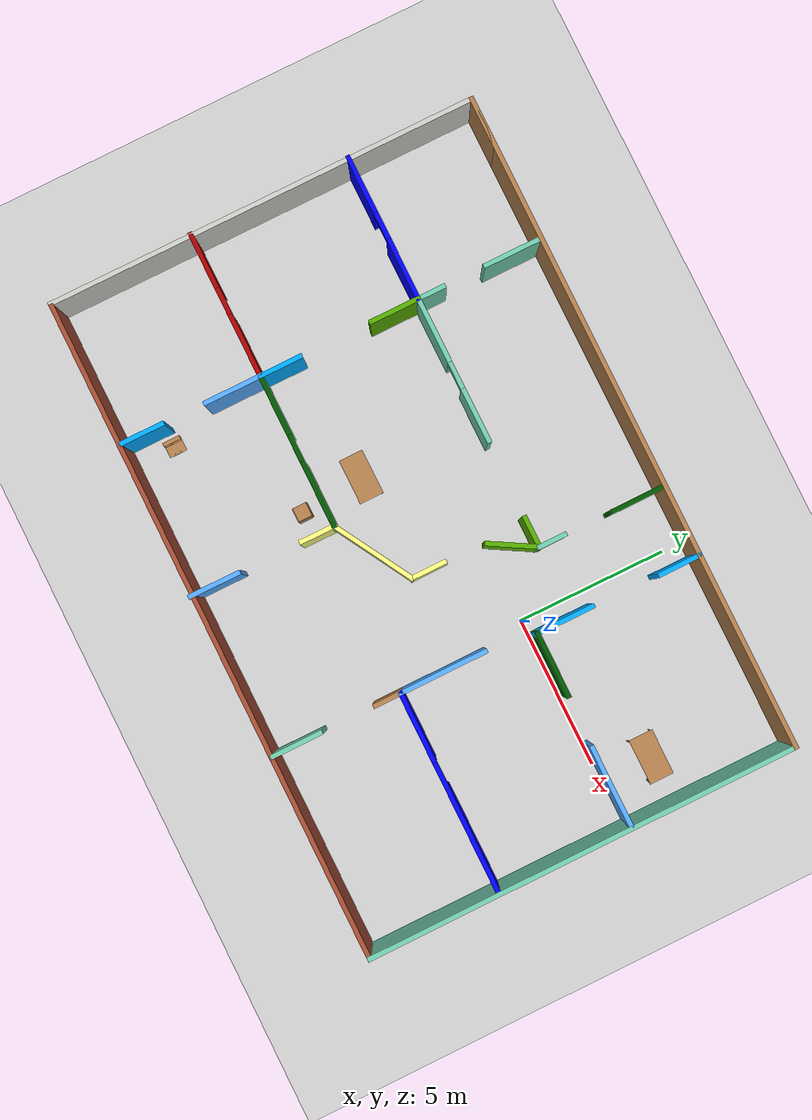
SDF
<sdf version="1.6">
 <world name="default">
  <model name="ground_plane">
   <static>1</static>
   <link name="link">
    <collision name="collision">
     <geometry><plane><normal>0 0 1</normal><size>100 100</size></plane></geometry>
     <surface>
      <contact><collide_bitmask>65535</collide_bitmask></contact>
      <friction><ode><mu>100</mu><mu2>50</mu2></ode></friction>
     </surface>
    </collision>
    <visual name="visual">
     <cast_shadows>0</cast_shadows>
     <geometry><plane><normal>0 0 1</normal><size>100 100</size></plane></geometry>
     <material>
      <script><uri>file://media/materials/scripts/gazebo.material</uri><name>Gazebo/Grey</name></script>
     </material>
    </visual>
   </link>
  </model>
  <model name="BuildingThree">
   <pose>-4.03643 -1.5479 0 0 -0 0</pose>
   <link name="Wall_0">
    <collision name="Wall_0_Collision">
     <geometry><box><size>21.75 0.15 2.5</size></box></geometry>
     <pose>0 0 1.25 0 -0 0</pose>
    </collision>
    <visual name="Wall_0_Visual">
     <pose>0 0 1.25 0 -0 0</pose>
     <geometry><box><size>21.75 0.15 2.5</size></box></geometry>
     <material>
      <script><uri>file://media/materials/scripts/gazebo.material</uri><name>Gazebo/Wood</name></script>
      <ambient>1 1 1 1</ambient>
     </material>
     <meta><layer>0</layer></meta>
    </visual>
    <pose>0.266002 7.20676 0 0 -0 0</pose>
   </link>
   <link name="Wall_1">
    <collision name="Wall_1_Collision">
     <geometry><box><size>14.5 0.15 2.5</size></box></geometry>
     <pose>0 0 1.25 0 -0 0</pose>
    </collision>
    <visual name="Wall_1_Visual">
     <pose>0 0 1.25 0 -0 0</pose>
     <geometry><box><size>14.5 0.15 2.5</size></box></geometry>
     <material>
      <script><uri>file://media/materials/scripts/gazebo.material</uri><name>Gazebo/Grey</name></script>
      <ambient>0.435294 0.796078 0.67451 1</ambient>
     </material>
     <meta><layer>0</layer></meta>
    </visual>
    <pose>11.066 0.031757 0 0 0 -1.5708</pose>
   </link>
   <link name="Wall_10">
    <pose>-8.641 -2.36931 0 0 -0 0</pose>
    <visual name="Wall_10_Visual_0">
     <pose>-1.54369 0 1.25 0 -0 0</pose>
     <geometry><box><size>1.91262 0.15 2.5</size></box></geometry>
     <material>
      <script><uri>file://media/materials/scripts/gazebo.material</uri><name>Gazebo/Grey</name></script>
      <ambient>0.666667 0 0 1</ambient>
     </material>
     <meta><layer>0</layer></meta>
    </visual>
    <collision name="Wall_10_Collision_0">
     <geometry><box><size>1.91262 0.15 2.5</size></box></geometry>
     <pose>-1.54369 0 1.25 0 -0 0</pose>
    </collision>
    <visual name="Wall_10_Visual_1">
     <pose>1.40631 0 1.25 0 -0 0</pose>
     <geometry><box><size>2.18738 0.15 2.5</size></box></geometry>
     <material>
      <script><uri>file://media/materials/scripts/gazebo.material</uri><name>Gazebo/Grey</name></script>
      <ambient>0.666667 0 0 1</ambient>
     </material>
     <meta><layer>0</layer></meta>
    </visual>
    <collision name="Wall_10_Collision_1">
     <geometry><box><size>2.18738 0.15 2.5</size></box></geometry>
     <pose>1.40631 0 1.25 0 -0 0</pose>
    </collision>
    <visual name="Wall_10_Visual_2">
     <pose>-0.137383 0 2.25 0 -0 0</pose>
     <geometry><box><size>0.9 0.15 0.5</size></box></geometry>
     <material>
      <script><uri>file://media/materials/scripts/gazebo.material</uri><name>Gazebo/Grey</name></script>
      <ambient>0.666667 0 0 1</ambient>
     </material>
     <meta><layer>0</layer></meta>
    </visual>
    <collision name="Wall_10_Collision_2">
     <geometry><box><size>0.9 0.15 0.5</size></box></geometry>
     <pose>-0.137383 0 2.25 0 -0 0</pose>
    </collision>
   </link>
   <link name="Wall_11">
    <collision name="Wall_11_Collision">
     <geometry><box><size>2 0.15 2.5</size></box></geometry>
     <pose>0 0 1.25 0 -0 0</pose>
    </collision>
    <visual name="Wall_11_Visual">
     <pose>0 0 1.25 0 -0 0</pose>
     <geometry><box><size>2 0.15 2.5</size></box></geometry>
     <material>
      <script><uri>file://media/materials/scripts/gazebo.material</uri><name>Gazebo/Grey</name></script>
      <ambient>0.333333 0.666667 1 1</ambient>
     </material>
     <meta><layer>0</layer></meta>
    </visual>
    <pose>-6.216 -3.29431 0 0 0 -1.5708</pose>
   </link>
   <link name="Wall_13">
    <collision name="Wall_13_Collision">
     <geometry><box><size>1.5 0.15 2.5</size></box></geometry>
     <pose>0 0 1.25 0 -0 0</pose>
    </collision>
    <visual name="Wall_13_Visual">
     <pose>0 0 1.25 0 -0 0</pose>
     <geometry><box><size>1.5 0.15 2.5</size></box></geometry>
     <material>
      <script><uri>file://media/materials/scripts/gazebo.material</uri><name>Gazebo/Grey</name></script>
      <ambient>0 0.666667 1 1</ambient>
     </material>
     <meta><layer>0</layer></meta>
    </visual>
    <pose>-6.22477 -6.37595 0 0 -0 1.5708</pose>
   </link>
   <link name="Wall_15">
    <collision name="Wall_15_Collision">
     <geometry><box><size>2 0.15 2.5</size></box></geometry>
     <pose>0 0 1.25 0 -0 0</pose>
    </collision>
    <visual name="Wall_15_Visual">
     <pose>0 0 1.25 0 -0 0</pose>
     <geometry><box><size>2 0.15 2.5</size></box></geometry>
     <material>
      <script><uri>file://media/materials/scripts/gazebo.material</uri><name>Gazebo/Grey</name></script>
      <ambient>0.435294 0.796078 0.67451 1</ambient>
     </material>
     <meta><layer>0</layer></meta>
    </visual>
    <pose>-6.22477 6.22856 0 0 0 -1.5708</pose>
   </link>
   <link name="Wall_17">
    <pose>-8.641 3.00393 0 0 -0 0</pose>
    <visual name="Wall_17_Visual_0">
     <pose>-1.51709 0 1.25 0 -0 0</pose>
     <geometry><box><size>1.96582 0.15 2.5</size></box></geometry>
     <material>
      <script><uri>file://media/materials/scripts/gazebo.material</uri><name>Gazebo/Grey</name></script>
      <ambient>0 0 1 1</ambient>
     </material>
     <meta><layer>0</layer></meta>
    </visual>
    <collision name="Wall_17_Collision_0">
     <geometry><box><size>1.96582 0.15 2.5</size></box></geometry>
     <pose>-1.51709 0 1.25 0 -0 0</pose>
    </collision>
    <visual name="Wall_17_Visual_1">
     <pose>1.43291 0 1.25 0 -0 0</pose>
     <geometry><box><size>2.13418 0.15 2.5</size></box></geometry>
     <material>
      <script><uri>file://media/materials/scripts/gazebo.material</uri><name>Gazebo/Grey</name></script>
      <ambient>0 0 1 1</ambient>
     </material>
     <meta><layer>0</layer></meta>
    </visual>
    <collision name="Wall_17_Collision_1">
     <geometry><box><size>2.13418 0.15 2.5</size></box></geometry>
     <pose>1.43291 0 1.25 0 -0 0</pose>
    </collision>
    <visual name="Wall_17_Visual_2">
     <pose>-0.084182 0 2.25 0 -0 0</pose>
     <geometry><box><size>0.9 0.15 0.5</size></box></geometry>
     <material>
      <script><uri>file://media/materials/scripts/gazebo.material</uri><name>Gazebo/Grey</name></script>
      <ambient>0 0 1 1</ambient>
     </material>
     <meta><layer>0</layer></meta>
    </visual>
    <collision name="Wall_17_Collision_2">
     <geometry><box><size>0.9 0.15 0.5</size></box></geometry>
     <pose>-0.084182 0 2.25 0 -0 0</pose>
    </collision>
   </link>
   <link name="Wall_18">
    <collision name="Wall_18_Collision">
     <geometry><box><size>1 0.15 2.5</size></box></geometry>
     <pose>0 0 1.25 0 -0 0</pose>
    </collision>
    <visual name="Wall_18_Visual">
     <pose>0 0 1.25 0 -0 0</pose>
     <geometry><box><size>1 0.15 2.5</size></box></geometry>
     <material>
      <script><uri>file://media/materials/scripts/gazebo.material</uri><name>Gazebo/Grey</name></script>
      <ambient>0.435294 0.796078 0.67451 1</ambient>
     </material>
     <meta><layer>0</layer></meta>
    </visual>
    <pose>-6.216 3.42893 0 0 -0 1.5708</pose>
   </link>
   <link name="Wall_2">
    <collision name="Wall_2_Collision">
     <geometry><box><size>22.25 0.15 2.5</size></box></geometry>
     <pose>0 0 1.25 0 -0 0</pose>
    </collision>
    <visual name="Wall_2_Visual">
     <pose>0 0 1.25 0 -0 0</pose>
     <geometry><box><size>22.25 0.15 2.5</size></box></geometry>
     <material>
      <script><uri>file://media/materials/scripts/gazebo.material</uri><name>Gazebo/Bricks</name></script>
      <ambient>1 1 1 1</ambient>
     </material>
     <meta><layer>0</layer></meta>
    </visual>
    <pose>0.016002 -7.14324 0 0 -0 3.14159</pose>
   </link>
   <link name="Wall_20">
    <collision name="Wall_20_Collision">
     <geometry><box><size>1.75 0.15 2.5</size></box></geometry>
     <pose>0 0 1.25 0 -0 0</pose>
    </collision>
    <visual name="Wall_20_Visual">
     <pose>0 0 1.25 0 -0 0</pose>
     <geometry><box><size>1.75 0.15 2.5</size></box></geometry>
     <material>
      <script><uri>file://media/materials/scripts/gazebo.material</uri><name>Gazebo/Grey</name></script>
      <ambient>0.333333 0.666667 0 1</ambient>
     </material>
     <meta><layer>0</layer></meta>
    </visual>
    <pose>-6.216 2.20393 0 0 0 -1.5708</pose>
   </link>
   <link name="Wall_22">
    <collision name="Wall_22_Collision">
     <geometry><box><size>1.5 0.15 2.5</size></box></geometry>
     <pose>0 0 1.25 0 -0 0</pose>
    </collision>
    <visual name="Wall_22_Visual">
     <pose>0 0 1.25 0 -0 0</pose>
     <geometry><box><size>1.5 0.15 2.5</size></box></geometry>
     <material>
      <script><uri>file://media/materials/scripts/gazebo.material</uri><name>Gazebo/Grey</name></script>
      <ambient>0 0.666667 1 1</ambient>
     </material>
     <meta><layer>0</layer></meta>
    </visual>
    <pose>-6.216 -1.69431 0 0 -0 1.5708</pose>
   </link>
   <link name="Wall_24">
    <pose>-3.666 -2.36931 0 0 -0 0</pose>
    <visual name="Wall_24_Visual_0">
     <pose>-1.58253 0 1.25 0 -0 0</pose>
     <geometry><box><size>2.08493 0.15 2.5</size></box></geometry>
     <material>
      <script><uri>file://media/materials/scripts/gazebo.material</uri><name>Gazebo/Grey</name></script>
      <ambient>0 0.333333 0 1</ambient>
     </material>
     <meta><layer>0</layer></meta>
    </visual>
    <collision name="Wall_24_Collision_0">
     <geometry><box><size>2.08493 0.15 2.5</size></box></geometry>
     <pose>-1.58253 0 1.25 0 -0 0</pose>
    </collision>
    <visual name="Wall_24_Visual_1">
     <pose>1.49247 0 1.25 0 -0 0</pose>
     <geometry><box><size>2.26507 0.15 2.5</size></box></geometry>
     <material>
      <script><uri>file://media/materials/scripts/gazebo.material</uri><name>Gazebo/Grey</name></script>
      <ambient>0 0.333333 0 1</ambient>
     </material>
     <meta><layer>0</layer></meta>
    </visual>
    <collision name="Wall_24_Collision_1">
     <geometry><box><size>2.26507 0.15 2.5</size></box></geometry>
     <pose>1.49247 0 1.25 0 -0 0</pose>
    </collision>
    <visual name="Wall_24_Visual_2">
     <pose>-0.090066 0 2.25 0 -0 0</pose>
     <geometry><box><size>0.9 0.15 0.5</size></box></geometry>
     <material>
      <script><uri>file://media/materials/scripts/gazebo.material</uri><name>Gazebo/Grey</name></script>
      <ambient>0 0.333333 0 1</ambient>
     </material>
     <meta><layer>0</layer></meta>
    </visual>
    <collision name="Wall_24_Collision_2">
     <geometry><box><size>0.9 0.15 0.5</size></box></geometry>
     <pose>-0.090066 0 2.25 0 -0 0</pose>
    </collision>
   </link>
   <link name="Wall_25">
    <collision name="Wall_25_Collision">
     <geometry><box><size>1.25 0.15 2.5</size></box></geometry>
     <pose>0 0 1.25 0 -0 0</pose>
    </collision>
    <visual name="Wall_25_Visual">
     <pose>0 0 1.25 0 -0 0</pose>
     <geometry><box><size>1.25 0.15 2.5</size></box></geometry>
     <material>
      <script><uri>file://media/materials/scripts/gazebo.material</uri><name>Gazebo/Grey</name></script>
      <ambient>1 1 0.498039 1</ambient>
     </material>
     <meta><layer>0</layer></meta>
    </visual>
    <pose>-1.116 -2.91931 0 0 0 -1.5708</pose>
   </link>
   <link name="Wall_27">
    <collision name="Wall_27_Collision">
     <geometry><box><size>1.75 0.15 2.5</size></box></geometry>
     <pose>0 0 1.25 0 -0 0</pose>
    </collision>
    <visual name="Wall_27_Visual">
     <pose>0 0 1.25 0 -0 0</pose>
     <geometry><box><size>1.75 0.15 2.5</size></box></geometry>
     <material>
      <script><uri>file://media/materials/scripts/gazebo.material</uri><name>Gazebo/Grey</name></script>
      <ambient>0.333333 0.666667 1 1</ambient>
     </material>
     <meta><layer>0</layer></meta>
    </visual>
    <pose>-1.11753 -6.41055 0 0 -0 1.5708</pose>
   </link>
   <link name="Wall_29">
    <pose>-3.791 3.00393 0 0 -0 0</pose>
    <visual name="Wall_29_Visual_0">
     <pose>-1.37773 0 1.25 0 -0 0</pose>
     <geometry><box><size>2.24453 0.15 2.5</size></box></geometry>
     <material>
      <script><uri>file://media/materials/scripts/gazebo.material</uri><name>Gazebo/Grey</name></script>
      <ambient>0.435294 0.796078 0.67451 1</ambient>
     </material>
     <meta><layer>0</layer></meta>
    </visual>
    <collision name="Wall_29_Collision_0">
     <geometry><box><size>2.24453 0.15 2.5</size></box></geometry>
     <pose>-1.37773 0 1.25 0 -0 0</pose>
    </collision>
    <visual name="Wall_29_Visual_1">
     <pose>1.57227 0 1.25 0 -0 0</pose>
     <geometry><box><size>1.85546 0.15 2.5</size></box></geometry>
     <material>
      <script><uri>file://media/materials/scripts/gazebo.material</uri><name>Gazebo/Grey</name></script>
      <ambient>0.435294 0.796078 0.67451 1</ambient>
     </material>
     <meta><layer>0</layer></meta>
    </visual>
    <collision name="Wall_29_Collision_1">
     <geometry><box><size>1.85546 0.15 2.5</size></box></geometry>
     <pose>1.57227 0 1.25 0 -0 0</pose>
    </collision>
    <visual name="Wall_29_Visual_2">
     <pose>0.194535 0 2.25 0 -0 0</pose>
     <geometry><box><size>0.9 0.15 0.5</size></box></geometry>
     <material>
      <script><uri>file://media/materials/scripts/gazebo.material</uri><name>Gazebo/Grey</name></script>
      <ambient>0.435294 0.796078 0.67451 1</ambient>
     </material>
     <meta><layer>0</layer></meta>
    </visual>
    <collision name="Wall_29_Collision_2">
     <geometry><box><size>0.9 0.15 0.5</size></box></geometry>
     <pose>0.194535 0 2.25 0 -0 0</pose>
    </collision>
   </link>
   <link name="Wall_3">
    <collision name="Wall_3_Collision">
     <geometry><box><size>14.5 0.15 2.5</size></box></geometry>
     <pose>0 0 1.25 0 -0 0</pose>
    </collision>
    <visual name="Wall_3_Visual">
     <pose>0 0 1.25 0 -0 0</pose>
     <geometry><box><size>14.5 0.15 2.5</size></box></geometry>
     <material>
      <script><uri>file://media/materials/scripts/gazebo.material</uri><name>Gazebo/CeilingTiled</name></script>
      <ambient>0 0.666667 1 1</ambient>
     </material>
     <meta><layer>0</layer></meta>
    </visual>
    <pose>-11.034 0.031757 0 0 -0 1.5708</pose>
   </link>
   <link name="Wall_31">
    <collision name="Wall_31_Collision">
     <geometry><box><size>1.75 0.15 2.5</size></box></geometry>
     <pose>0 0 1.25 0 -0 0</pose>
    </collision>
    <visual name="Wall_31_Visual">
     <pose>0 0 1.25 0 -0 0</pose>
     <geometry><box><size>1.75 0.15 2.5</size></box></geometry>
     <material>
      <script><uri>file://media/materials/scripts/gazebo.material</uri><name>Gazebo/Grey</name></script>
      <ambient>0 0.333333 0 1</ambient>
     </material>
     <meta><layer>0</layer></meta>
    </visual>
    <pose>2.2341 6.24716 0 0 0 -1.5708</pose>
   </link>
   <link name="Wall_35">
    <collision name="Wall_35_Collision">
     <geometry><box><size>1.0904 0.15 2.5</size></box></geometry>
     <pose>0 0 1.25 0 -0 0</pose>
    </collision>
    <visual name="Wall_35_Visual">
     <pose>0 0 1.25 0 -0 0</pose>
     <geometry><box><size>1.0904 0.15 2.5</size></box></geometry>
     <material>
      <script><uri>file://media/materials/scripts/gazebo.material</uri><name>Gazebo/Grey</name></script>
      <ambient>0.333333 0.666667 0 1</ambient>
     </material>
     <meta><layer>0</layer></meta>
    </visual>
    <pose>1.69349 2.95072 0 0 -0 0</pose>
   </link>
   <link name="Wall_36">
    <collision name="Wall_36_Collision">
     <geometry><box><size>1 0.15 2.5</size></box></geometry>
     <pose>0 0 1.25 0 -0 0</pose>
    </collision>
    <visual name="Wall_36_Visual">
     <pose>0 0 1.25 0 -0 0</pose>
     <geometry><box><size>1 0.15 2.5</size></box></geometry>
     <material>
      <script><uri>file://media/materials/scripts/gazebo.material</uri><name>Gazebo/Grey</name></script>
      <ambient>0.435294 0.796078 0.67451 1</ambient>
     </material>
     <meta><layer>0</layer></meta>
    </visual>
    <pose>2.21689 3.37573 0 0 -0 1.5708</pose>
   </link>
   <link name="Wall_38">
    <collision name="Wall_38_Collision">
     <geometry><box><size>1.75 0.15 2.5</size></box></geometry>
     <pose>0 0 1.25 0 -0 0</pose>
    </collision>
    <visual name="Wall_38_Visual">
     <pose>0 0 1.25 0 -0 0</pose>
     <geometry><box><size>1.75 0.15 2.5</size></box></geometry>
     <material>
      <script><uri>file://media/materials/scripts/gazebo.material</uri><name>Gazebo/Grey</name></script>
      <ambient>0.435294 0.796078 0.67451 1</ambient>
     </material>
     <meta><layer>0</layer></meta>
    </visual>
    <pose>4.33039 -6.30036 0 0 -0 1.5708</pose>
   </link>
   <link name="Wall_4">
    <collision name="Wall_4_Collision">
     <geometry><box><size>1.75 0.15 2.5</size></box></geometry>
     <pose>0 0 1.25 0 -0 0</pose>
    </collision>
    <visual name="Wall_4_Visual">
     <pose>0 0 1.25 0 -0 0</pose>
     <geometry><box><size>1.75 0.15 2.5</size></box></geometry>
     <material>
      <script><uri>file://media/materials/scripts/gazebo.material</uri><name>Gazebo/Wood</name></script>
      <ambient>1 1 1 1</ambient>
     </material>
     <meta><layer>0</layer></meta>
    </visual>
    <pose>-10.234 7.20676 0 0 -0 0</pose>
   </link>
   <link name="Wall_40">
    <collision name="Wall_40_Collision">
     <geometry><box><size>1 0.15 2.5</size></box></geometry>
     <pose>0 0 1.25 0 -0 0</pose>
    </collision>
    <visual name="Wall_40_Visual">
     <pose>0 0 1.25 0 -0 0</pose>
     <geometry><box><size>1 0.15 2.5</size></box></geometry>
     <material>
      <script><uri>file://media/materials/scripts/gazebo.material</uri><name>Gazebo/Wood</name></script>
      <ambient>1 1 1 1</ambient>
     </material>
     <meta><layer>0</layer></meta>
    </visual>
    <pose>4.33039 -3.21733 0 0 -0 1.5708</pose>
   </link>
   <link name="Wall_41">
    <pose>7.63039 -2.79233 0 0 -0 0</pose>
    <visual name="Wall_41_Visual_0">
     <pose>-2.17929 0 1.25 0 -0 0</pose>
     <geometry><box><size>2.39142 0.15 2.5</size></box></geometry>
     <material>
      <script><uri>file://media/materials/scripts/gazebo.material</uri><name>Gazebo/Grey</name></script>
      <ambient>0 0 1 1</ambient>
     </material>
     <meta><layer>0</layer></meta>
    </visual>
    <collision name="Wall_41_Collision_0">
     <geometry><box><size>2.39142 0.15 2.5</size></box></geometry>
     <pose>-2.17929 0 1.25 0 -0 0</pose>
    </collision>
    <visual name="Wall_41_Visual_1">
     <pose>1.64571 0 1.25 0 -0 0</pose>
     <geometry><box><size>3.45858 0.15 2.5</size></box></geometry>
     <material>
      <script><uri>file://media/materials/scripts/gazebo.material</uri><name>Gazebo/Grey</name></script>
      <ambient>0 0 1 1</ambient>
     </material>
     <meta><layer>0</layer></meta>
    </visual>
    <collision name="Wall_41_Collision_1">
     <geometry><box><size>3.45858 0.15 2.5</size></box></geometry>
     <pose>1.64571 0 1.25 0 -0 0</pose>
    </collision>
    <visual name="Wall_41_Visual_2">
     <pose>-0.533579 0 2.25 0 -0 0</pose>
     <geometry><box><size>0.9 0.15 0.5</size></box></geometry>
     <material>
      <script><uri>file://media/materials/scripts/gazebo.material</uri><name>Gazebo/Grey</name></script>
      <ambient>0 0 1 1</ambient>
     </material>
     <meta><layer>0</layer></meta>
    </visual>
    <collision name="Wall_41_Collision_2">
     <geometry><box><size>0.9 0.15 0.5</size></box></geometry>
     <pose>-0.533579 0 2.25 0 -0 0</pose>
    </collision>
   </link>
   <link name="Wall_43">
    <collision name="Wall_43_Collision">
     <geometry><box><size>3 0.15 2.5</size></box></geometry>
     <pose>0 0 1.25 0 -0 0</pose>
    </collision>
    <visual name="Wall_43_Visual">
     <pose>0 0 1.25 0 -0 0</pose>
     <geometry><box><size>3 0.15 2.5</size></box></geometry>
     <material>
      <script><uri>file://media/materials/scripts/gazebo.material</uri><name>Gazebo/Grey</name></script>
      <ambient>1 1 0.498039 1</ambient>
     </material>
     <meta><layer>0</layer></meta>
    </visual>
    <pose>0.118084 -1.65681 0 0 -0 0.523599</pose>
   </link>
   <link name="Wall_44">
    <collision name="Wall_44_Collision">
     <geometry><box><size>1.25 0.15 2.5</size></box></geometry>
     <pose>0 0 1.25 0 -0 0</pose>
    </collision>
    <visual name="Wall_44_Visual">
     <pose>0 0 1.25 0 -0 0</pose>
     <geometry><box><size>1.25 0.15 2.5</size></box></geometry>
     <material>
      <script><uri>file://media/materials/scripts/gazebo.material</uri><name>Gazebo/Grey</name></script>
      <ambient>1 1 0.498039 1</ambient>
     </material>
     <meta><layer>0</layer></meta>
    </visual>
    <pose>1.35217 -0.394315 0 0 -0 1.5708</pose>
   </link>
   <link name="Wall_46">
    <collision name="Wall_46_Collision">
     <geometry><box><size>1.75 0.15 2.5</size></box></geometry>
     <pose>0 0 1.25 0 -0 0</pose>
    </collision>
    <visual name="Wall_46_Visual">
     <pose>0 0 1.25 0 -0 0</pose>
     <geometry><box><size>1.75 0.15 2.5</size></box></geometry>
     <material>
      <script><uri>file://media/materials/scripts/gazebo.material</uri><name>Gazebo/Grey</name></script>
      <ambient>0.333333 0.666667 0 1</ambient>
     </material>
     <meta><layer>0</layer></meta>
    </visual>
    <pose>1.81689 2.25791 0 0 0 -2.0944</pose>
   </link>
   <link name="Wall_48">
    <collision name="Wall_48_Collision">
     <geometry><box><size>3 0.15 2.5</size></box></geometry>
     <pose>0 0 1.25 0 -0 0</pose>
    </collision>
    <visual name="Wall_48_Visual">
     <pose>0 0 1.25 0 -0 0</pose>
     <geometry><box><size>3 0.15 2.5</size></box></geometry>
     <material>
      <script><uri>file://media/materials/scripts/gazebo.material</uri><name>Gazebo/Grey</name></script>
      <ambient>0.333333 0.666667 1 1</ambient>
     </material>
     <meta><layer>0</layer></meta>
    </visual>
    <pose>4.33039 -1.36733 0 0 -0 1.5708</pose>
   </link>
   <link name="Wall_50">
    <collision name="Wall_50_Collision">
     <geometry><box><size>2 0.15 2.5</size></box></geometry>
     <pose>0 0 1.25 0 -0 0</pose>
    </collision>
    <visual name="Wall_50_Visual">
     <pose>0 0 1.25 0 -0 0</pose>
     <geometry><box><size>2 0.15 2.5</size></box></geometry>
     <material>
      <script><uri>file://media/materials/scripts/gazebo.material</uri><name>Gazebo/Grey</name></script>
      <ambient>0 0.666667 1 1</ambient>
     </material>
     <meta><layer>0</layer></meta>
    </visual>
    <pose>4.54319 2.65591 0 0 -0 1.5708</pose>
   </link>
   <link name="Wall_52">
    <collision name="Wall_52_Collision">
     <geometry><box><size>2.25 0.15 2.5</size></box></geometry>
     <pose>0 0 1.25 0 -0 0</pose>
    </collision>
    <visual name="Wall_52_Visual">
     <pose>0 0 1.25 0 -0 0</pose>
     <geometry><box><size>2.25 0.15 2.5</size></box></geometry>
     <material>
      <script><uri>file://media/materials/scripts/gazebo.material</uri><name>Gazebo/Grey</name></script>
      <ambient>0 0.333333 0 1</ambient>
     </material>
     <meta><layer>0</layer></meta>
    </visual>
    <pose>5.59319 1.73091 0 0 -0 0</pose>
   </link>
   <link name="Wall_54">
    <collision name="Wall_54_Collision">
     <geometry><box><size>2.75 0.15 2.5</size></box></geometry>
     <pose>0 0 1.25 0 -0 0</pose>
    </collision>
    <visual name="Wall_54_Visual">
     <pose>0 0 1.25 0 -0 0</pose>
     <geometry><box><size>2.75 0.15 2.5</size></box></geometry>
     <material>
      <script><uri>file://media/materials/scripts/gazebo.material</uri><name>Gazebo/Grey</name></script>
      <ambient>0.333333 0.666667 1 1</ambient>
     </material>
     <meta><layer>0</layer></meta>
    </visual>
    <pose>9.67362 1.67771 0 0 -0 0</pose>
   </link>
   <link name="Wall_56">
    <collision name="Wall_56_Collision">
     <geometry><box><size>1.5 0.15 2.5</size></box></geometry>
     <pose>0 0 1.25 0 -0 0</pose>
    </collision>
    <visual name="Wall_56_Visual">
     <pose>0 0 1.25 0 -0 0</pose>
     <geometry><box><size>1.5 0.15 2.5</size></box></geometry>
     <material>
      <script><uri>file://media/materials/scripts/gazebo.material</uri><name>Gazebo/Grey</name></script>
      <ambient>0 0.666667 1 1</ambient>
     </material>
     <meta><layer>0</layer></meta>
    </visual>
    <pose>4.59639 6.53555 0 0 0 -1.5708</pose>
   </link>
   <static>1</static>
  </model>
  <model name="cabinet">
   <static>1</static>
   <link name="cabinet_bottom_plate">
    <inertial>
     <pose>0 0 -1 0 -0 0</pose>
     <inertia><ixx>2.05</ixx><ixy>0</ixy><ixz>0</ixz><iyy>2.05</iyy><iyz>0</iyz><izz>2.05</izz></inertia>
     <mass>25</mass>
    </inertial>
    <collision name="cabinet_bottom_plate_geom">
     <pose>0 0 0.01 0 -0 0</pose>
     <geometry><box><size>0.45 0.45 0.02</size></box></geometry>
    </collision>
    <visual name="cabinet_bottom_plate_geom_visual">
     <pose>0 0 0.01 0 -0 0</pose>
     <geometry><box><size>0.45 0.45 0.02</size></box></geometry>
     <material>
      <script><uri>file://media/materials/scripts/gazebo.material</uri><name>Gazebo/Wood</name></script>
     </material>
    </visual>
    <collision name="cabinet_bottom_plate_geom_cabinet_back_plate">
     <pose>0.235 0 0.51 0 -0 0</pose>
     <geometry><box><size>0.02 0.45 1.02</size></box></geometry>
    </collision>
    <visual name="cabinet_bottom_plate_geom_cabinet_back_plate_visual">
     <pose>0.235 0 0.51 0 -0 0</pose>
     <geometry><box><size>0.02 0.45 1.02</size></box></geometry>
     <material>
      <script><uri>file://media/materials/scripts/gazebo.material</uri><name>Gazebo/Wood</name></script>
     </material>
    </visual>
    <collision name="cabinet_bottom_plate_geom_cabinet_left_plate">
     <pose>0 0.235 0.51 0 -0 0</pose>
     <geometry><box><size>0.45 0.02 1.02</size></box></geometry>
    </collision>
    <visual name="cabinet_bottom_plate_geom_cabinet_left_plate_visual">
     <pose>0 0.235 0.51 0 -0 0</pose>
     <geometry><box><size>0.45 0.02 1.02</size></box></geometry>
     <material>
      <script><uri>file://media/materials/scripts/gazebo.material</uri><name>Gazebo/Wood</name></script>
     </material>
    </visual>
    <collision name="cabinet_bottom_plate_geom_cabinet_middle_plate">
     <pose>0 0 0.51 0 -0 0</pose>
     <geometry><box><size>0.45 0.45 0.02</size></box></geometry>
    </collision>
    <visual name="cabinet_bottom_plate_geom_cabinet_middle_plate_visual">
     <pose>0 0 0.51 0 -0 0</pose>
     <geometry><box><size>0.45 0.45 0.02</size></box></geometry>
     <material>
      <script><uri>file://media/materials/scripts/gazebo.material</uri><name>Gazebo/Wood</name></script>
     </material>
    </visual>
    <collision name="cabinet_bottom_plate_geom_cabinet_right_plate">
     <pose>0 -0.235 0.51 0 -0 0</pose>
     <geometry><box><size>0.45 0.02 1.02</size></box></geometry>
    </collision>
    <visual name="cabinet_bottom_plate_geom_cabinet_right_plate_visual">
     <pose>0 -0.235 0.51 0 -0 0</pose>
     <geometry><box><size>0.45 0.02 1.02</size></box></geometry>
     <material>
      <script><uri>file://media/materials/scripts/gazebo.material</uri><name>Gazebo/Wood</name></script>
     </material>
    </visual>
    <collision name="cabinet_bottom_plate_geom_cabinet_top_plate">
     <pose>0 0 1.01 0 -0 0</pose>
     <geometry><box><size>0.45 0.45 0.02</size></box></geometry>
    </collision>
    <visual name="cabinet_bottom_plate_geom_cabinet_top_plate_visual">
     <pose>0 0 1.01 0 -0 0</pose>
     <geometry><box><size>0.45 0.45 0.02</size></box></geometry>
     <material>
      <script><uri>file://media/materials/scripts/gazebo.material</uri><name>Gazebo/Wood</name></script>
     </material>
    </visual>
   </link>
   <pose>-6.06896 -4.64082 0 0 -0 0</pose>
  </model>
  <model name="table">
   <static>1</static>
   <link name="link">
    <collision name="surface">
     <pose>0 0 1 0 -0 0</pose>
     <geometry><box><size>1.5 0.8 0.03</size></box></geometry>
     <surface><friction><ode><mu>0.6</mu><mu2>0.6</mu2></ode></friction></surface>
    </collision>
    <visual name="visual1">
     <pose>0 0 1 0 -0 0</pose>
     <geometry><box><size>1.5 0.8 0.03</size></box></geometry>
     <material>
      <script><uri>file://media/materials/scripts/gazebo.material</uri><name>Gazebo/Wood</name></script>
     </material>
    </visual>
    <collision name="front_left_leg">
     <pose>0.68 0.38 0.5 0 -0 0</pose>
     <geometry><cylinder><radius>0.02</radius><length>1</length></cylinder></geometry>
    </collision>
    <visual name="front_left_leg">
     <pose>0.68 0.38 0.5 0 -0 0</pose>
     <geometry><cylinder><radius>0.02</radius><length>1</length></cylinder></geometry>
     <material>
      <script><uri>file://media/materials/scripts/gazebo.material</uri><name>Gazebo/Grey</name></script>
     </material>
    </visual>
    <collision name="front_right_leg">
     <pose>0.68 -0.38 0.5 0 -0 0</pose>
     <geometry><cylinder><radius>0.02</radius><length>1</length></cylinder></geometry>
    </collision>
    <visual name="front_right_leg">
     <pose>0.68 -0.38 0.5 0 -0 0</pose>
     <geometry><cylinder><radius>0.02</radius><length>1</length></cylinder></geometry>
     <material>
      <script><uri>file://media/materials/scripts/gazebo.material</uri><name>Gazebo/Grey</name></script>
     </material>
    </visual>
    <collision name="back_right_leg">
     <pose>-0.68 -0.38 0.5 0 -0 0</pose>
     <geometry><cylinder><radius>0.02</radius><length>1</length></cylinder></geometry>
    </collision>
    <visual name="back_right_leg">
     <pose>-0.68 -0.38 0.5 0 -0 0</pose>
     <geometry><cylinder><radius>0.02</radius><length>1</length></cylinder></geometry>
     <material>
      <script><uri>file://media/materials/scripts/gazebo.material</uri><name>Gazebo/Grey</name></script>
     </material>
    </visual>
    <collision name="back_left_leg">
     <pose>-0.68 0.38 0.5 0 -0 0</pose>
     <geometry><cylinder><radius>0.02</radius><length>1</length></cylinder></geometry>
    </collision>
    <visual name="back_left_leg">
     <pose>-0.68 0.38 0.5 0 -0 0</pose>
     <geometry><cylinder><radius>0.02</radius><length>1</length></cylinder></geometry>
     <material>
      <script><uri>file://media/materials/scripts/gazebo.material</uri><name>Gazebo/Grey</name></script>
     </material>
    </visual>
   </link>
   <pose>-6.2377 -2.51041 0 0 -0 0</pose>
  </model>
  <model name="table_0">
   <static>1</static>
   <link name="link">
    <collision name="surface">
     <pose>0 0 1 0 -0 0</pose>
     <geometry><box><size>1.5 0.8 0.03</size></box></geometry>
     <surface><friction><ode><mu>0.6</mu><mu2>0.6</mu2></ode></friction></surface>
    </collision>
    <visual name="visual1">
     <pose>0 0 1 0 -0 0</pose>
     <geometry><box><size>1.5 0.8 0.03</size></box></geometry>
     <material>
      <script><uri>file://media/materials/scripts/gazebo.material</uri><name>Gazebo/Wood</name></script>
     </material>
    </visual>
    <collision name="front_left_leg">
     <pose>0.68 0.38 0.5 0 -0 0</pose>
     <geometry><cylinder><radius>0.02</radius><length>1</length></cylinder></geometry>
    </collision>
    <visual name="front_left_leg">
     <pose>0.68 0.38 0.5 0 -0 0</pose>
     <geometry><cylinder><radius>0.02</radius><length>1</length></cylinder></geometry>
     <material>
      <script><uri>file://media/materials/scripts/gazebo.material</uri><name>Gazebo/Grey</name></script>
     </material>
    </visual>
    <collision name="front_right_leg">
     <pose>0.68 -0.38 0.5 0 -0 0</pose>
     <geometry><cylinder><radius>0.02</radius><length>1</length></cylinder></geometry>
    </collision>
    <visual name="front_right_leg">
     <pose>0.68 -0.38 0.5 0 -0 0</pose>
     <geometry><cylinder><radius>0.02</radius><length>1</length></cylinder></geometry>
     <material>
      <script><uri>file://media/materials/scripts/gazebo.material</uri><name>Gazebo/Grey</name></script>
     </material>
    </visual>
    <collision name="back_right_leg">
     <pose>-0.68 -0.38 0.5 0 -0 0</pose>
     <geometry><cylinder><radius>0.02</radius><length>1</length></cylinder></geometry>
    </collision>
    <visual name="back_right_leg">
     <pose>-0.68 -0.38 0.5 0 -0 0</pose>
     <geometry><cylinder><radius>0.02</radius><length>1</length></cylinder></geometry>
     <material>
      <script><uri>file://media/materials/scripts/gazebo.material</uri><name>Gazebo/Grey</name></script>
     </material>
    </visual>
    <collision name="back_left_leg">
     <pose>-0.68 0.38 0.5 0 -0 0</pose>
     <geometry><cylinder><radius>0.02</radius><length>1</length></cylinder></geometry>
    </collision>
    <visual name="back_left_leg">
     <pose>-0.68 0.38 0.5 0 -0 0</pose>
     <geometry><cylinder><radius>0.02</radius><length>1</length></cylinder></geometry>
     <material>
      <script><uri>file://media/materials/scripts/gazebo.material</uri><name>Gazebo/Grey</name></script>
     </material>
    </visual>
   </link>
   <pose>5.52675 1.71094 0 0 -0 0</pose>
  </model>
  <model name="wooden_case_metal_peg">
   <link name="wooden_case::base">
    <pose>0 0 0.024 0 -0 0</pose>
    <inertial>
     <pose>-0.022184 0 0.171592 0 -0 0</pose>
     <mass>3.96264</mass>
     <inertia>
      <ixx>0.213536</ixx>
      <ixy>0</ixy>
      <ixz>0.000779377</ixz>
      <iyy>0.0708943</iyy>
      <iyz>0</iyz>
      <izz>0.154604</izz>
     </inertia>
    </inertial>
    <collision name="collision_back">
     <pose>-0.053975 0 0.1778 0 -0 0</pose>
     <geometry><box><size>0.01905 0.5461 0.3175</size></box></geometry>
     <surface>
      <contact>
       <poissons_ratio>0.347</poissons_ratio>
       <elastic_modulus>8.8e+09</elastic_modulus>
       <ode><kp>100000</kp><kd>100</kd><max_vel>100</max_vel><min_depth>0.001</min_depth></ode>
      </contact>
      <friction>
       <torsional>
        <coefficient>1</coefficient>
        <use_patch_radius>0</use_patch_radius>
        <surface_radius>0.01</surface_radius>
       </torsional>
      </friction>
     </surface>
    </collision>
    <visual name="visual_back">
     <pose>-0.053975 0 0.1778 0 -0 0</pose>
     <geometry><box><size>0.01905 0.5461 0.3175</size></box></geometry>
     <material>
      <script><uri>file://media/materials/scripts/gazebo.material</uri><name>Gazebo/Wood</name></script>
     </material>
    </visual>
    <collision name="collision_bottom">
     <pose>0 0 0.009525 0 -0 0</pose>
     <geometry><box><size>0.127 0.5842 0.01905</size></box></geometry>
     <surface>
      <contact>
       <poissons_ratio>0.347</poissons_ratio>
       <elastic_modulus>8.8e+09</elastic_modulus>
       <ode><kp>100000</kp><kd>100</kd><max_vel>100</max_vel><min_depth>0.001</min_depth></ode>
      </contact>
      <friction>
       <torsional>
        <coefficient>1</coefficient>
        <use_patch_radius>0</use_patch_radius>
        <surface_radius>0.01</surface_radius>
       </torsional>
      </friction>
     </surface>
    </collision>
    <visual name="visual_bottom">
     <pose>0 0 0.009525 0 -0 0</pose>
     <geometry><box><size>0.127 0.5842 0.01905</size></box></geometry>
     <material>
      <script><uri>file://media/materials/scripts/gazebo.material</uri><name>Gazebo/Wood</name></script>
     </material>
    </visual>
    <collision name="collision_top">
     <pose>0 0 0.346075 0 -0 0</pose>
     <geometry><box><size>0.127 0.5842 0.01905</size></box></geometry>
     <surface>
      <contact>
       <poissons_ratio>0.347</poissons_ratio>
       <elastic_modulus>8.8e+09</elastic_modulus>
       <ode><kp>100000</kp><kd>100</kd><max_vel>100</max_vel><min_depth>0.001</min_depth></ode>
      </contact>
      <friction>
       <torsional>
        <coefficient>1</coefficient>
        <use_patch_radius>0</use_patch_radius>
        <surface_radius>0.01</surface_radius>
       </torsional>
      </friction>
     </surface>
    </collision>
    <visual name="visual_top">
     <pose>0 0 0.346075 0 -0 0</pose>
     <geometry><box><size>0.127 0.5842 0.01905</size></box></geometry>
     <material>
      <script><uri>file://media/materials/scripts/gazebo.material</uri><name>Gazebo/Wood</name></script>
     </material>
    </visual>
    <collision name="collision_left">
     <pose>0 -0.282575 0.1778 0 -0 0</pose>
     <geometry><box><size>0.127 0.01905 0.3175</size></box></geometry>
     <surface>
      <contact>
       <poissons_ratio>0.347</poissons_ratio>
       <elastic_modulus>8.8e+09</elastic_modulus>
       <ode><kp>100000</kp><kd>100</kd><max_vel>100</max_vel><min_depth>0.001</min_depth></ode>
      </contact>
      <friction>
       <torsional>
        <coefficient>1</coefficient>
        <use_patch_radius>0</use_patch_radius>
        <surface_radius>0.01</surface_radius>
       </torsional>
      </friction>
     </surface>
    </collision>
    <visual name="visual_left">
     <pose>0 -0.282575 0.1778 0 -0 0</pose>
     <geometry><box><size>0.127 0.01905 0.3175</size></box></geometry>
     <material>
      <script><uri>file://media/materials/scripts/gazebo.material</uri><name>Gazebo/Wood</name></script>
     </material>
    </visual>
    <collision name="collision_right">
     <pose>0 0.282575 0.1778 0 -0 0</pose>
     <geometry><box><size>0.127 0.01905 0.3175</size></box></geometry>
     <surface>
      <contact>
       <poissons_ratio>0.347</poissons_ratio>
       <elastic_modulus>8.8e+09</elastic_modulus>
       <ode><kp>100000</kp><kd>100</kd><max_vel>100</max_vel><min_depth>0.001</min_depth></ode>
      </contact>
      <friction>
       <torsional>
        <coefficient>1</coefficient>
        <use_patch_radius>0</use_patch_radius>
        <surface_radius>0.01</surface_radius>
       </torsional>
      </friction>
     </surface>
    </collision>
    <visual name="visual_right">
     <pose>0 0.282575 0.1778 0 -0 0</pose>
     <geometry><box><size>0.127 0.01905 0.3175</size></box></geometry>
     <material>
      <script><uri>file://media/materials/scripts/gazebo.material</uri><name>Gazebo/Wood</name></script>
     </material>
    </visual>
    <collision name="collision_block_left">
     <pose>0.0095 -0.2151 -0.012 0 -0 0</pose>
     <geometry><box><size>0.108 0.05 0.024</size></box></geometry>
     <surface>
      <contact>
       <poissons_ratio>0.347</poissons_ratio>
       <elastic_modulus>8.8e+09</elastic_modulus>
       <ode><kp>100000</kp><kd>100</kd><max_vel>100</max_vel><min_depth>0.001</min_depth></ode>
      </contact>
      <friction>
       <torsional>
        <coefficient>1</coefficient>
        <use_patch_radius>0</use_patch_radius>
        <surface_radius>0.01</surface_radius>
       </torsional>
      </friction>
     </surface>
    </collision>
    <visual name="visual_block_left">
     <pose>0.0095 -0.2151 -0.012 0 -0 0</pose>
     <geometry><box><size>0.108 0.05 0.024</size></box></geometry>
     <material>
      <script><uri>file://media/materials/scripts/gazebo.material</uri><name>Gazebo/Wood</name></script>
     </material>
    </visual>
    <collision name="collision_block_right">
     <pose>0.0095 0.2151 -0.012 0 -0 0</pose>
     <geometry><box><size>0.108 0.05 0.024</size></box></geometry>
     <surface>
      <contact>
       <poissons_ratio>0.347</poissons_ratio>
       <elastic_modulus>8.8e+09</elastic_modulus>
       <ode><kp>100000</kp><kd>100</kd><max_vel>100</max_vel><min_depth>0.001</min_depth></ode>
      </contact>
      <friction>
       <torsional>
        <coefficient>1</coefficient>
        <use_patch_radius>0</use_patch_radius>
        <surface_radius>0.01</surface_radius>
       </torsional>
      </friction>
     </surface>
    </collision>
    <visual name="visual_block_right">
     <pose>0.0095 0.2151 -0.012 0 -0 0</pose>
     <geometry><box><size>0.108 0.05 0.024</size></box></geometry>
     <material>
      <script><uri>file://media/materials/scripts/gazebo.material</uri><name>Gazebo/Wood</name></script>
     </material>
    </visual>
   </link>
   <link name="wooden_case::lid">
    <pose>0.243775 0 0.009525 0 -0 0</pose>
    <inertial>
     <mass>1.97874</mass>
     <inertia>
      <ixx>0.0563367</ixx>
      <ixy>0</ixy>
      <ixz>0</ixz>
      <iyy>0.020911</iyy>
      <iyz>0</iyz>
      <izz>0.0771281</izz>
     </inertia>
    </inertial>
    <collision name="collision">
     <geometry><box><size>0.3556 0.5842 0.01905</size></box></geometry>
     <surface>
      <contact>
       <poissons_ratio>0.347</poissons_ratio>
       <elastic_modulus>8.8e+09</elastic_modulus>
       <ode><kp>100000</kp><kd>100</kd><max_vel>100</max_vel><min_depth>0.001</min_depth></ode>
      </contact>
      <friction>
       <torsional>
        <coefficient>1</coefficient>
        <use_patch_radius>0</use_patch_radius>
        <surface_radius>0.01</surface_radius>
       </torsional>
      </friction>
     </surface>
    </collision>
    <visual name="visual">
     <geometry><box><size>0.3556 0.5842 0.01905</size></box></geometry>
     <material>
      <script><uri>file://media/materials/scripts/gazebo.material</uri><name>Gazebo/Wood</name></script>
     </material>
    </visual>
    <visual name="tee_nut_1">
     <pose>0.122 -0.216 0 0 -0 0</pose>
     <geometry><cylinder><radius>0.00635</radius><length>0.0192405</length></cylinder></geometry>
     <material>
      <script><uri>file://media/materials/scripts/gazebo.material</uri><name>Gazebo/Grey</name></script>
     </material>
    </visual>
    <visual name="tee_nut_2">
     <pose>0.122 -0.088 0 0 -0 0</pose>
     <geometry><cylinder><radius>0.00635</radius><length>0.0192405</length></cylinder></geometry>
     <material>
      <script><uri>file://media/materials/scripts/gazebo.material</uri><name>Gazebo/Grey</name></script>
     </material>
    </visual>
    <visual name="tee_nut_3">
     <pose>0.122 0.088 0 0 -0 0</pose>
     <geometry><cylinder><radius>0.00635</radius><length>0.0192405</length></cylinder></geometry>
     <material>
      <script><uri>file://media/materials/scripts/gazebo.material</uri><name>Gazebo/Grey</name></script>
     </material>
    </visual>
    <visual name="tee_nut_4">
     <pose>0.122 0.216 0 0 -0 0</pose>
     <geometry><cylinder><radius>0.00635</radius><length>0.0192405</length></cylinder></geometry>
     <material>
      <script><uri>file://media/materials/scripts/gazebo.material</uri><name>Gazebo/Grey</name></script>
     </material>
    </visual>
   </link>
   <joint name="wooden_case::lid_hinge" type="revolute">
    <pose>-0.1778 0 0.01905 0 -0 0</pose>
    <parent>wooden_case::base</parent>
    <child>wooden_case::lid</child>
    <axis>
     <xyz>0 1 0</xyz>
     <limit><upper>0.523599</upper><lower>-1.5708</lower></limit>
     <use_parent_model_frame>0</use_parent_model_frame>
     <dynamics><spring_reference>0</spring_reference><spring_stiffness>0</spring_stiffness></dynamics>
    </axis>
   </joint>
   <link name="peg::link">
    <pose>0.365774 0.216 0.05005 0 -0 0</pose>
    <inertial>
     <mass>0.0121</mass>
     <inertia>
      <ixx>3.90898e-06</ixx>
      <ixy>0</ixy>
      <ixz>0</ixz>
      <iyy>3.90898e-06</iyy>
      <iyz>0</iyz>
      <izz>6.58845e-08</izz>
     </inertia>
    </inertial>
    <collision name="collision">
     <geometry><cylinder><radius>0.0033</radius><length>0.062</length></cylinder></geometry>
     <surface>
      <contact>
       <poissons_ratio>0.305</poissons_ratio>
       <elastic_modulus>2e+11</elastic_modulus>
       <ode><kp>100000</kp><kd>100</kd><max_vel>100</max_vel><min_depth>0.001</min_depth></ode>
      </contact>
      <friction>
       <torsional>
        <coefficient>1</coefficient>
        <use_patch_radius>0</use_patch_radius>
        <surface_radius>0.01</surface_radius>
       </torsional>
      </friction>
     </surface>
    </collision>
    <visual name="visual">
     <geometry><cylinder><radius>0.0033</radius><length>0.062</length></cylinder></geometry>
     <material>
      <script><uri>file://media/materials/scripts/gazebo.material</uri><name>Gazebo/Grey</name></script>
     </material>
    </visual>
   </link>
   <joint name="case_peg" type="revolute">
    <child>peg::link</child>
    <parent>wooden_case::lid</parent>
    <axis>
     <xyz>0 0 1</xyz>
     <limit><upper>0</upper><lower>0</lower></limit>
     <use_parent_model_frame>0</use_parent_model_frame>
     <dynamics><spring_reference>0</spring_reference><spring_stiffness>0</spring_stiffness></dynamics>
    </axis>
   </joint>
   <pose>-9.94998 -7.36964 -0.001057 0 -0.00043 0</pose>
  </model>
 </world>
</sdf>
